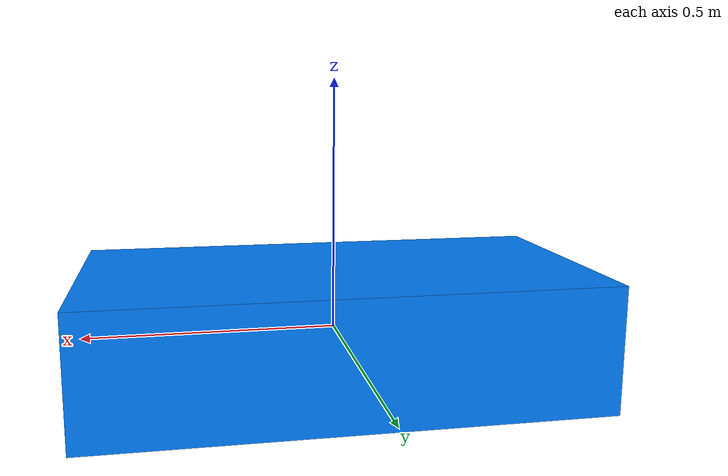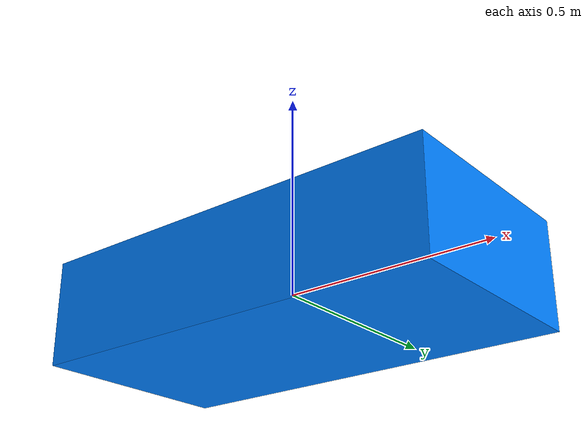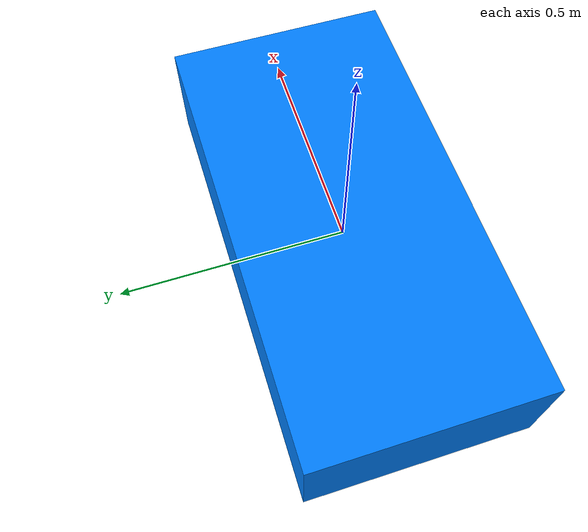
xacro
<?xml version='1.0'?>
<robot name="my_robot" xmlns:xacro="http://ros.org/wiki/xacro">
  <!-- Base Link -->
  <link name="base_link">
    <visual>
      <origin xyz="0 0 0" rpy="0 0 0" />
      <geometry>
        <box size="1.0 0.5 0.25"/>
      </geometry>
      <material name="blue">
         <color rgba="0 0.5 1 1"/>
      </material>
    </visual>
    <!-- Base collision, mass and inertia -->
    <collision>
      <origin xyz="0 0 0" rpy="0 0 0" />
      <geometry>
          <box size="1.0 0.5 0.25"/>
      </geometry>
    </collision>
    <inertial>
      <mass value="5"/>
      <inertia ixx="0.13" ixy="0.0" ixz="0.0" iyy="0.21" iyz="0.0" izz="0.13"/>
    </inertial>
  </link>

  <gazebo reference="base_link">
    <material>Gazebo/Blue</material>
    <pose>0 0 0.1 0 0 0</pose>
  </gazebo>
</robot>
